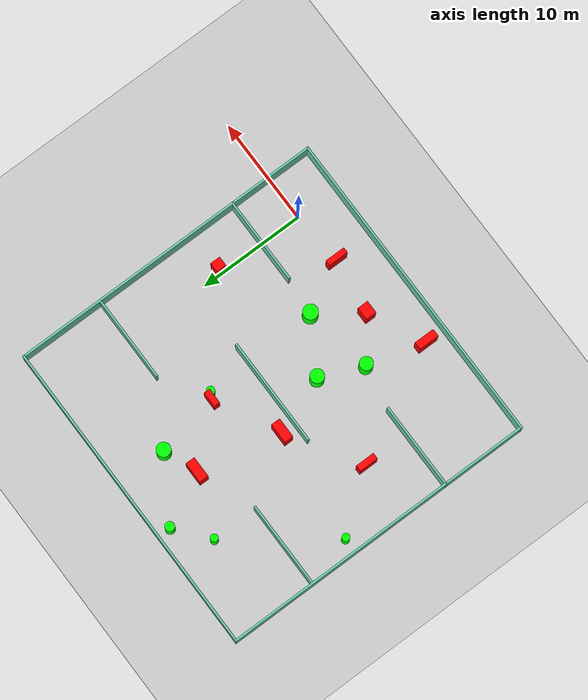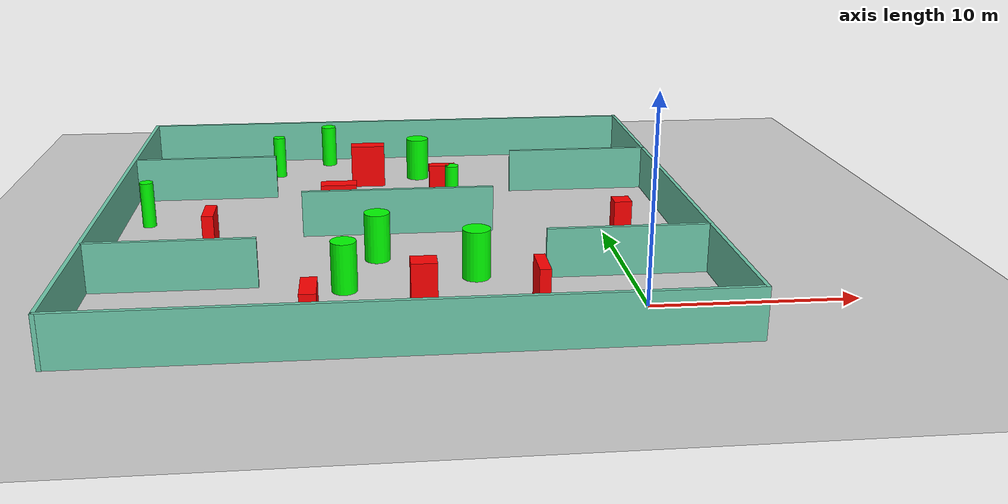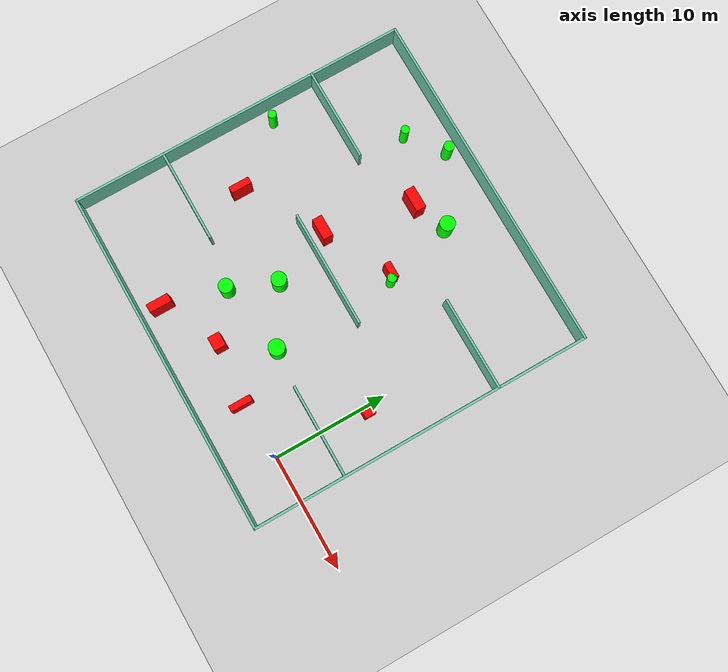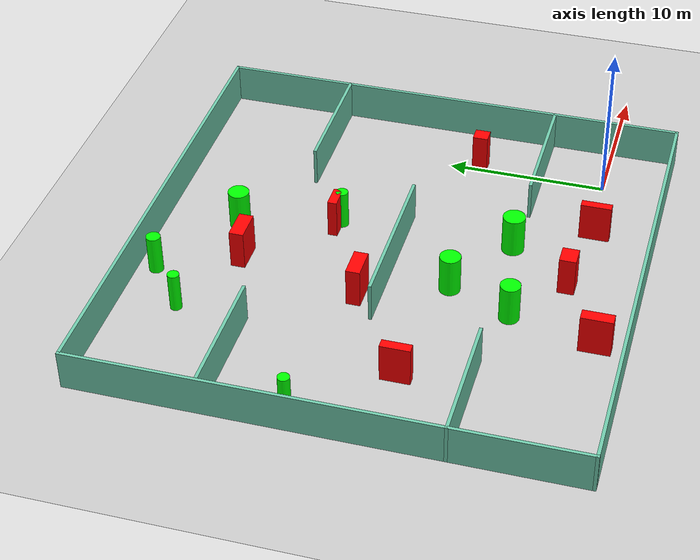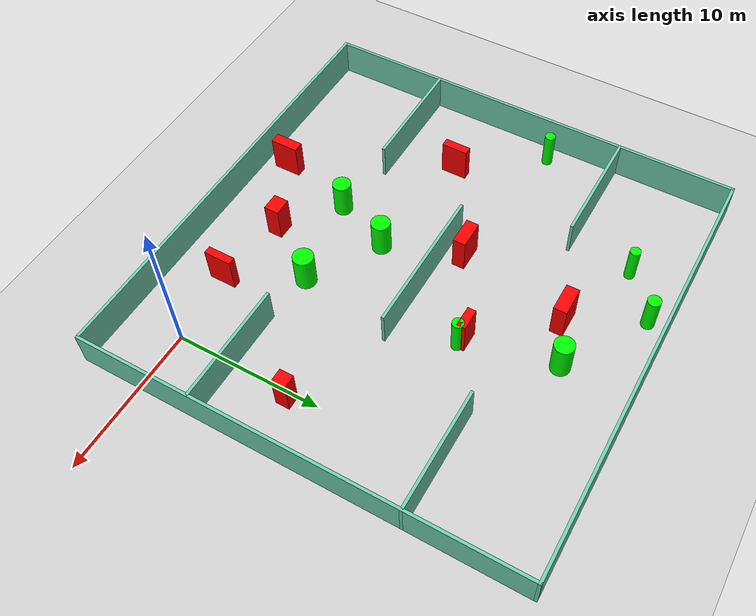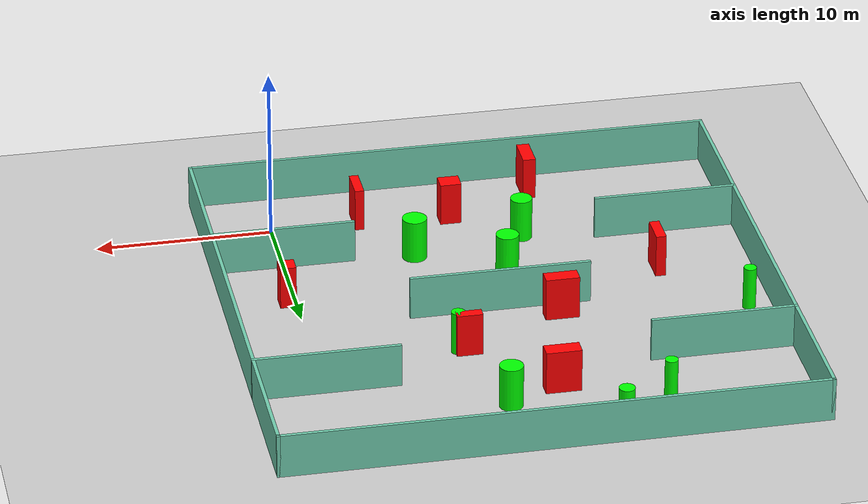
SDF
<sdf version="1.7">
 <world name="default">
  <light name="sun" type="directional">
   <pose>0 0 10 0 -0 0</pose>
   <diffuse>0.8 0.8 0.8 1</diffuse>
   <specular>0.2 0.2 0.2 1</specular>
   <attenuation>
    <range>1000</range>
    <constant>0.9</constant>
    <linear>0.01</linear>
    <quadratic>0.001</quadratic>
   </attenuation>
   <direction>-0.5 0.1 -0.9</direction>
   <spot><inner_angle>0</inner_angle><outer_angle>0</outer_angle><falloff>0</falloff></spot>
  </light>
  <model name="ground_plane">
   <static>1</static>
   <link name="link">
    <collision name="collision">
     <geometry><plane><normal>0 0 1</normal><size>100 100</size></plane></geometry>
     <surface>
      <contact><collide_bitmask>65535</collide_bitmask></contact>
      <friction><ode><mu>100</mu><mu2>50</mu2></ode></friction>
     </surface>
    </collision>
    <visual name="visual">
     <cast_shadows>0</cast_shadows>
     <geometry><plane><normal>0 0 1</normal><size>100 100</size></plane></geometry>
     <material>
      <script><uri>file://media/materials/scripts/gazebo.material</uri><name>Gazebo/Grey</name></script>
     </material>
    </visual>
   </link>
  </model>
  <gravity>0 0 -9.8</gravity>
  <magnetic_field>6e-06 2.3e-05 -4.2e-05</magnetic_field>
  <atmosphere type="adiabatic"/>
  <physics type="ode">
   <max_step_size>0.001</max_step_size>
   <real_time_factor>1</real_time_factor>
   <real_time_update_rate>1000</real_time_update_rate>
  </physics>
  <scene><ambient>0.4 0.4 0.4 1</ambient><background>0.7 0.7 0.7 1</background><shadows>1</shadows></scene>
  <spherical_coordinates>
   <surface_model>EARTH_WGS84</surface_model>
   <latitude_deg>0</latitude_deg>
   <longitude_deg>0</longitude_deg>
   <elevation>0</elevation>
   <heading_deg>0</heading_deg>
  </spherical_coordinates>
  <model name="my_base_walls">
   <link name="Wall_10">
    <collision name="Wall_10_Collision">
     <geometry><box><size>8.2 0.2 2.5</size></box></geometry>
     <pose>0 0 1.25 0 -0 0</pose>
    </collision>
    <visual name="Wall_10_Visual">
     <pose>0 0 1.25 0 -0 0</pose>
     <geometry><box><size>8.2 0.2 2.5</size></box></geometry>
     <material>
      <script><uri>file://media/materials/scripts/gazebo.material</uri><name>Gazebo/Grey</name></script>
      <ambient>0.435294 0.796078 0.67451 1</ambient>
     </material>
     <meta><layer>0</layer></meta>
    </visual>
    <pose>-11 -7 0 0 -0 0</pose>
   </link>
   <link name="Wall_12">
    <collision name="Wall_12_Collision">
     <geometry><box><size>8.2 0.2 2.5</size></box></geometry>
     <pose>0 0 1.25 0 -0 0</pose>
    </collision>
    <visual name="Wall_12_Visual">
     <pose>0 0 1.25 0 -0 0</pose>
     <geometry><box><size>8.2 0.2 2.5</size></box></geometry>
     <material>
      <script><uri>file://media/materials/scripts/gazebo.material</uri><name>Gazebo/Grey</name></script>
      <ambient>0.435294 0.796078 0.67451 1</ambient>
     </material>
     <meta><layer>0</layer></meta>
    </visual>
    <pose>-11 7 0 0 -0 0</pose>
   </link>
   <link name="Wall_14">
    <collision name="Wall_14_Collision">
     <geometry><box><size>8.2 0.2 2.5</size></box></geometry>
     <pose>0 0 1.25 0 -0 0</pose>
    </collision>
    <visual name="Wall_14_Visual">
     <pose>0 0 1.25 0 -0 0</pose>
     <geometry><box><size>8.2 0.2 2.5</size></box></geometry>
     <material>
      <script><uri>file://media/materials/scripts/gazebo.material</uri><name>Gazebo/Grey</name></script>
      <ambient>0.435294 0.796078 0.67451 1</ambient>
     </material>
     <meta><layer>0</layer></meta>
    </visual>
    <pose>11 7 0 0 -0 3.14159</pose>
   </link>
   <link name="Wall_16">
    <collision name="Wall_16_Collision">
     <geometry><box><size>10.2 0.2 2.5</size></box></geometry>
     <pose>0 0 1.25 0 -0 0</pose>
    </collision>
    <visual name="Wall_16_Visual">
     <pose>0 0 1.25 0 -0 0</pose>
     <geometry><box><size>10.2 0.2 2.5</size></box></geometry>
     <material>
      <script><uri>file://media/materials/scripts/gazebo.material</uri><name>Gazebo/Grey</name></script>
      <ambient>0.435294 0.796078 0.67451 1</ambient>
     </material>
     <meta><layer>0</layer></meta>
    </visual>
    <pose>0 0 0 0 -0 3.14159</pose>
   </link>
   <link name="Wall_2">
    <collision name="Wall_2_Collision">
     <geometry><box><size>30.2 0.2 2.5</size></box></geometry>
     <pose>0 0 1.25 0 -0 0</pose>
    </collision>
    <visual name="Wall_2_Visual">
     <pose>0 0 1.25 0 -0 0</pose>
     <geometry><box><size>30.2 0.2 2.5</size></box></geometry>
     <material>
      <script><uri>file://media/materials/scripts/gazebo.material</uri><name>Gazebo/Grey</name></script>
      <ambient>0.435294 0.796078 0.67451 1</ambient>
     </material>
     <meta><layer>0</layer></meta>
    </visual>
    <pose>0 -15 0 0 -0 3.14159</pose>
   </link>
   <link name="Wall_3">
    <collision name="Wall_3_Collision">
     <geometry><box><size>30.2 0.2 2.5</size></box></geometry>
     <pose>0 0 1.25 0 -0 0</pose>
    </collision>
    <visual name="Wall_3_Visual">
     <pose>0 0 1.25 0 -0 0</pose>
     <geometry><box><size>30.2 0.2 2.5</size></box></geometry>
     <material>
      <script><uri>file://media/materials/scripts/gazebo.material</uri><name>Gazebo/Grey</name></script>
      <ambient>0.435294 0.796078 0.67451 1</ambient>
     </material>
     <meta><layer>0</layer></meta>
    </visual>
    <pose>-15 0 0 0 -0 1.5708</pose>
   </link>
   <link name="Wall_4">
    <collision name="Wall_4_Collision">
     <geometry><box><size>30.2 0.2 2.5</size></box></geometry>
     <pose>0 0 1.25 0 -0 0</pose>
    </collision>
    <visual name="Wall_4_Visual">
     <pose>0 0 1.25 0 -0 0</pose>
     <geometry><box><size>30.2 0.2 2.5</size></box></geometry>
     <material>
      <script><uri>file://media/materials/scripts/gazebo.material</uri><name>Gazebo/Grey</name></script>
      <ambient>0.435294 0.796078 0.67451 1</ambient>
     </material>
     <meta><layer>0</layer></meta>
    </visual>
    <pose>0 15 0 0 -0 0</pose>
   </link>
   <link name="Wall_6">
    <collision name="Wall_6_Collision">
     <geometry><box><size>30.2 0.2 2.5</size></box></geometry>
     <pose>0 0 1.25 0 -0 0</pose>
    </collision>
    <visual name="Wall_6_Visual">
     <pose>0 0 1.25 0 -0 0</pose>
     <geometry><box><size>30.2 0.2 2.5</size></box></geometry>
     <material>
      <script><uri>file://media/materials/scripts/gazebo.material</uri><name>Gazebo/Grey</name></script>
      <ambient>0.435294 0.796078 0.67451 1</ambient>
     </material>
     <meta><layer>0</layer></meta>
    </visual>
    <pose>15 0 0 0 -0 1.5708</pose>
   </link>
   <link name="Wall_8">
    <collision name="Wall_8_Collision">
     <geometry><box><size>8.2 0.2 2.5</size></box></geometry>
     <pose>0 0 1.25 0 -0 0</pose>
    </collision>
    <visual name="Wall_8_Visual">
     <pose>0 0 1.25 0 -0 0</pose>
     <geometry><box><size>8.2 0.2 2.5</size></box></geometry>
     <material>
      <script><uri>file://media/materials/scripts/gazebo.material</uri><name>Gazebo/Grey</name></script>
      <ambient>0.435294 0.796078 0.67451 1</ambient>
     </material>
     <meta><layer>0</layer></meta>
    </visual>
    <pose>11 -7 0 0 -0 3.14159</pose>
   </link>
   <static>1</static>
   <pose>-11 11 0 0 -0 0</pose>
  </model>
  <model name="cylinder1">
   <static>1</static>
   <link name="link">
    <inertial>
     <mass>1</mass>
     <inertia><ixx>0.5</ixx><ixy>0</ixy><ixz>0</ixz><iyy>0.5</iyy><iyz>0</iyz><izz>1</izz></inertia>
    </inertial>
    <collision name="collision">
     <geometry><cylinder><radius>0.3616602711875984</radius><length>2.5</length></cylinder></geometry>
    </collision>
    <visual name="visual">
     <geometry><cylinder><radius>0.3616602711875984</radius><length>2.5</length></cylinder></geometry>
     <material>
      <ambient>0 1 0 1</ambient>
      <diffuse>0 1 0 1</diffuse>
      <specular>0.1 0.1 0.1 1</specular>
      <emissive>0 0 0 0</emissive>
     </material>
    </visual>
   </link>
   <pose>-24.5854188750983 13.435571691868745 1.25 0 0 0</pose>
  </model>
  <model name="cylinder2">
   <static>1</static>
   <link name="link">
    <inertial>
     <mass>1</mass>
     <inertia><ixx>0.5</ixx><ixy>0</ixy><ixz>0</ixz><iyy>0.5</iyy><iyz>0</iyz><izz>1</izz></inertia>
    </inertial>
    <collision name="collision">
     <geometry><cylinder><radius>0.3869331199635881</radius><length>2.5</length></cylinder></geometry>
    </collision>
    <visual name="visual">
     <geometry><cylinder><radius>0.3869331199635881</radius><length>2.5</length></cylinder></geometry>
     <material>
      <ambient>0 1 0 1</ambient>
      <diffuse>0 1 0 1</diffuse>
      <specular>0.1 0.1 0.1 1</specular>
      <emissive>0 0 0 0</emissive>
     </material>
    </visual>
   </link>
   <pose>-7.790558435718037 15.111362202832705 1.25 0 0 0</pose>
  </model>
  <model name="cylinder3">
   <static>1</static>
   <link name="link">
    <inertial>
     <mass>1</mass>
     <inertia><ixx>0.5</ixx><ixy>0</ixy><ixz>0</ixz><iyy>0.5</iyy><iyz>0</iyz><izz>1</izz></inertia>
    </inertial>
    <collision name="collision">
     <geometry><cylinder><radius>0.3589301370159203</radius><length>2.5</length></cylinder></geometry>
    </collision>
    <visual name="visual">
     <geometry><cylinder><radius>0.3589301370159203</radius><length>2.5</length></cylinder></geometry>
     <material>
      <ambient>0 1 0 1</ambient>
      <diffuse>0 1 0 1</diffuse>
      <specular>0.1 0.1 0.1 1</specular>
      <emissive>0 0 0 0</emissive>
     </material>
    </visual>
   </link>
   <pose>-17.99796372434506 22.323994204247178 1.25 0 0 0</pose>
  </model>
  <model name="cylinder4">
   <static>1</static>
   <link name="link">
    <inertial>
     <mass>1</mass>
     <inertia><ixx>0.5</ixx><ixy>0</ixy><ixz>0</ixz><iyy>0.5</iyy><iyz>0</iyz><izz>1</izz></inertia>
    </inertial>
    <collision name="collision">
     <geometry><cylinder><radius>0.6222789168694703</radius><length>2.5</length></cylinder></geometry>
    </collision>
    <visual name="visual">
     <geometry><cylinder><radius>0.6222789168694703</radius><length>2.5</length></cylinder></geometry>
     <material>
      <ambient>0 1 0 1</ambient>
      <diffuse>0 1 0 1</diffuse>
      <specular>0.1 0.1 0.1 1</specular>
      <emissive>0 0 0 0</emissive>
     </material>
    </visual>
   </link>
   <pose>-13.833189421267729 3.184185527277739 1.25 0 0 0</pose>
  </model>
  <model name="cylinder5">
   <static>1</static>
   <link name="link">
    <inertial>
     <mass>1</mass>
     <inertia><ixx>0.5</ixx><ixy>0</ixy><ixz>0</ixz><iyy>0.5</iyy><iyz>0</iyz><izz>1</izz></inertia>
    </inertial>
    <collision name="collision">
     <geometry><cylinder><radius>0.6979076831566464</radius><length>2.5</length></cylinder></geometry>
    </collision>
    <visual name="visual">
     <geometry><cylinder><radius>0.6979076831566464</radius><length>2.5</length></cylinder></geometry>
     <material>
      <ambient>0 1 0 1</ambient>
      <diffuse>0 1 0 1</diffuse>
      <specular>0.1 0.1 0.1 1</specular>
      <emissive>0 0 0 0</emissive>
     </material>
    </visual>
   </link>
   <pose>-7.467153716167328 4.30684365948748 1.25 0 0 0</pose>
  </model>
  <model name="cylinder6">
   <static>1</static>
   <link name="link">
    <inertial>
     <mass>1</mass>
     <inertia><ixx>0.5</ixx><ixy>0</ixy><ixz>0</ixz><iyy>0.5</iyy><iyz>0</iyz><izz>1</izz></inertia>
    </inertial>
    <collision name="collision">
     <geometry><cylinder><radius>0.6491112385778524</radius><length>2.5</length></cylinder></geometry>
    </collision>
    <visual name="visual">
     <geometry><cylinder><radius>0.6491112385778524</radius><length>2.5</length></cylinder></geometry>
     <material>
      <ambient>0 1 0 1</ambient>
      <diffuse>0 1 0 1</diffuse>
      <specular>0.1 0.1 0.1 1</specular>
      <emissive>0 0 0 0</emissive>
     </material>
    </visual>
   </link>
   <pose>-12.201171145094554 7.14929364213881 1.25 0 0 0</pose>
  </model>
  <model name="cylinder7">
   <static>1</static>
   <link name="link">
    <inertial>
     <mass>1</mass>
     <inertia><ixx>0.5</ixx><ixy>0</ixy><ixz>0</ixz><iyy>0.5</iyy><iyz>0</iyz><izz>1</izz></inertia>
    </inertial>
    <collision name="collision">
     <geometry><cylinder><radius>0.44559752030941824</radius><length>2.5</length></cylinder></geometry>
    </collision>
    <visual name="visual">
     <geometry><cylinder><radius>0.44559752030941824</radius><length>2.5</length></cylinder></geometry>
     <material>
      <ambient>0 1 0 1</ambient>
      <diffuse>0 1 0 1</diffuse>
      <specular>0.1 0.1 0.1 1</specular>
      <emissive>0 0 0 0</emissive>
     </material>
    </visual>
   </link>
   <pose>-14.992627989849101 24.739893646651062 1.25 0 0 0</pose>
  </model>
  <model name="cylinder8">
   <static>1</static>
   <link name="link">
    <inertial>
     <mass>1</mass>
     <inertia><ixx>0.5</ixx><ixy>0</ixy><ixz>0</ixz><iyy>0.5</iyy><iyz>0</iyz><izz>1</izz></inertia>
    </inertial>
    <collision name="collision">
     <geometry><cylinder><radius>0.6598919616263282</radius><length>2.5</length></cylinder></geometry>
    </collision>
    <visual name="visual">
     <geometry><cylinder><radius>0.6598919616263282</radius><length>2.5</length></cylinder></geometry>
     <material>
      <ambient>0 1 0 1</ambient>
      <diffuse>0 1 0 1</diffuse>
      <specular>0.1 0.1 0.1 1</specular>
      <emissive>0 0 0 0</emissive>
     </material>
    </visual>
   </link>
   <pose>-9.451172212684488 21.28501651255913 1.25 0 0 0</pose>
  </model>
  <model name="box1">
   <static>1</static>
   <link name="link">
    <inertial>
     <mass>1</mass>
     <inertia><ixx>0.083</ixx><ixy>0</ixy><ixz>0</ixz><iyy>0.083</iyy><iyz>0</iyz><izz>0.083</izz></inertia>
    </inertial>
    <collision name="collision">
     <geometry><box><size>0.733703796718642 1.9273631358891015 2.5</size></box></geometry>
    </collision>
    <visual name="visual">
     <geometry><box><size>0.733703796718642 1.9273631358891015 2.5</size></box></geometry>
     <material>
      <ambient>1 0 0 1</ambient>
      <diffuse>1 0 0 1</diffuse>
      <specular>0.1 0.1 0.1 1</specular>
      <emissive>0 0 0 0</emissive>
     </material>
    </visual>
    <sensor name="my_contact" type="contact">
     <contact><collision>box_collision</collision><topic>__default_topic__</topic></contact>
    </sensor>
   </link>
   <pose>-15.241508262032845 -2.141040243242765 1.25 0 0 0</pose>
  </model>
  <model name="box2">
   <static>1</static>
   <link name="link">
    <inertial>
     <mass>1</mass>
     <inertia><ixx>0.083</ixx><ixy>0</ixy><ixz>0</ixz><iyy>0.083</iyy><iyz>0</iyz><izz>0.083</izz></inertia>
    </inertial>
    <collision name="collision">
     <geometry><box><size>1.900774411410183 0.8675442361546735 2.5</size></box></geometry>
    </collision>
    <visual name="visual">
     <geometry><box><size>1.900774411410183 0.8675442361546735 2.5</size></box></geometry>
     <material>
      <ambient>1 0 0 1</ambient>
      <diffuse>1 0 0 1</diffuse>
      <specular>0.1 0.1 0.1 1</specular>
      <emissive>0 0 0 0</emissive>
     </material>
    </visual>
    <sensor name="my_contact" type="contact">
     <contact><collision>box_collision</collision><topic>__default_topic__</topic></contact>
    </sensor>
   </link>
   <pose>-14.15817973539458 12.309533382570859 1.25 0 0 0</pose>
  </model>
  <model name="box3">
   <static>1</static>
   <link name="link">
    <inertial>
     <mass>1</mass>
     <inertia><ixx>0.083</ixx><ixy>0</ixy><ixz>0</ixz><iyy>0.083</iyy><iyz>0</iyz><izz>0.083</izz></inertia>
    </inertial>
    <collision name="collision">
     <geometry><box><size>1.446569266748011 0.5835678788404893 2.5</size></box></geometry>
    </collision>
    <visual name="visual">
     <geometry><box><size>1.446569266748011 0.5835678788404893 2.5</size></box></geometry>
     <material>
      <ambient>1 0 0 1</ambient>
      <diffuse>1 0 0 1</diffuse>
      <specular>0.1 0.1 0.1 1</specular>
      <emissive>0 0 0 0</emissive>
     </material>
    </visual>
    <sensor name="my_contact" type="contact">
     <contact><collision>box_collision</collision><topic>__default_topic__</topic></contact>
    </sensor>
   </link>
   <pose>-8.346299111460201 15.382973000012733 1.25 0 0 0</pose>
  </model>
  <model name="box4">
   <static>1</static>
   <link name="link">
    <inertial>
     <mass>1</mass>
     <inertia><ixx>0.083</ixx><ixy>0</ixy><ixz>0</ixz><iyy>0.083</iyy><iyz>0</iyz><izz>0.083</izz></inertia>
    </inertial>
    <collision name="collision">
     <geometry><box><size>1.2089299722893916 1.0261789560980357 2.5</size></box></geometry>
    </collision>
    <visual name="visual">
     <geometry><box><size>1.2089299722893916 1.0261789560980357 2.5</size></box></geometry>
     <material>
      <ambient>1 0 0 1</ambient>
      <diffuse>1 0 0 1</diffuse>
      <specular>0.1 0.1 0.1 1</specular>
      <emissive>0 0 0 0</emissive>
     </material>
    </visual>
    <sensor name="my_contact" type="contact">
     <contact><collision>box_collision</collision><topic>__default_topic__</topic></contact>
    </sensor>
   </link>
   <pose>-10.232213225571066 0.40457327829023404 1.25 0 0 0</pose>
  </model>
  <model name="box5">
   <static>1</static>
   <link name="link">
    <inertial>
     <mass>1</mass>
     <inertia><ixx>0.083</ixx><ixy>0</ixy><ixz>0</ixz><iyy>0.083</iyy><iyz>0</iyz><izz>0.083</izz></inertia>
    </inertial>
    <collision name="collision">
     <geometry><box><size>0.525134674583484 1.8964040029812892 2.5</size></box></geometry>
    </collision>
    <visual name="visual">
     <geometry><box><size>0.525134674583484 1.8964040029812892 2.5</size></box></geometry>
     <material>
      <ambient>1 0 0 1</ambient>
      <diffuse>1 0 0 1</diffuse>
      <specular>0.1 0.1 0.1 1</specular>
      <emissive>0 0 0 0</emissive>
     </material>
    </visual>
    <sensor name="my_contact" type="contact">
     <contact><collision>box_collision</collision><topic>__default_topic__</topic></contact>
    </sensor>
   </link>
   <pose>-5.001427197310052 -0.3204421324284401 1.25 0 0 0</pose>
  </model>
  <model name="box6">
   <static>1</static>
   <link name="link">
    <inertial>
     <mass>1</mass>
     <inertia><ixx>0.083</ixx><ixy>0</ixy><ixz>0</ixz><iyy>0.083</iyy><iyz>0</iyz><izz>0.083</izz></inertia>
    </inertial>
    <collision name="collision">
     <geometry><box><size>0.5824427298893535 1.8093853025726792 2.5</size></box></geometry>
    </collision>
    <visual name="visual">
     <geometry><box><size>0.5824427298893535 1.8093853025726792 2.5</size></box></geometry>
     <material>
      <ambient>1 0 0 1</ambient>
      <diffuse>1 0 0 1</diffuse>
      <specular>0.1 0.1 0.1 1</specular>
      <emissive>0 0 0 0</emissive>
     </material>
    </visual>
    <sensor name="my_contact" type="contact">
     <contact><collision>box_collision</collision><topic>__default_topic__</topic></contact>
    </sensor>
   </link>
   <pose>-20.574509293565967 8.213721492220788 1.25 0 0 0</pose>
  </model>
  <model name="box7">
   <static>1</static>
   <link name="link">
    <inertial>
     <mass>1</mass>
     <inertia><ixx>0.083</ixx><ixy>0</ixy><ixz>0</ixz><iyy>0.083</iyy><iyz>0</iyz><izz>0.083</izz></inertia>
    </inertial>
    <collision name="collision">
     <geometry><box><size>0.910984728206756 0.956289535626389 2.5</size></box></geometry>
    </collision>
    <visual name="visual">
     <geometry><box><size>0.910984728206756 0.956289535626389 2.5</size></box></geometry>
     <material>
      <ambient>1 0 0 1</ambient>
      <diffuse>1 0 0 1</diffuse>
      <specular>0.1 0.1 0.1 1</specular>
      <emissive>0 0 0 0</emissive>
     </material>
    </visual>
    <sensor name="my_contact" type="contact">
     <contact><collision>box_collision</collision><topic>__default_topic__</topic></contact>
    </sensor>
   </link>
   <pose>0.4763213365315089 8.132528265248947 1.25 0 0 0</pose>
  </model>
  <model name="box8">
   <static>1</static>
   <link name="link">
    <inertial>
     <mass>1</mass>
     <inertia><ixx>0.083</ixx><ixy>0</ixy><ixz>0</ixz><iyy>0.083</iyy><iyz>0</iyz><izz>0.083</izz></inertia>
    </inertial>
    <collision name="collision">
     <geometry><box><size>1.9744892433081338 0.8930950474571286 2.5</size></box></geometry>
    </collision>
    <visual name="visual">
     <geometry><box><size>1.9744892433081338 0.8930950474571286 2.5</size></box></geometry>
     <material>
      <ambient>1 0 0 1</ambient>
      <diffuse>1 0 0 1</diffuse>
      <specular>0.1 0.1 0.1 1</specular>
      <emissive>0 0 0 0</emissive>
     </material>
    </visual>
    <sensor name="my_contact" type="contact">
     <contact><collision>box_collision</collision><topic>__default_topic__</topic></contact>
    </sensor>
   </link>
   <pose>-12.523340466732922 20.045721978853113 1.25 0 0 0</pose>
  </model>
 </world>
</sdf>
